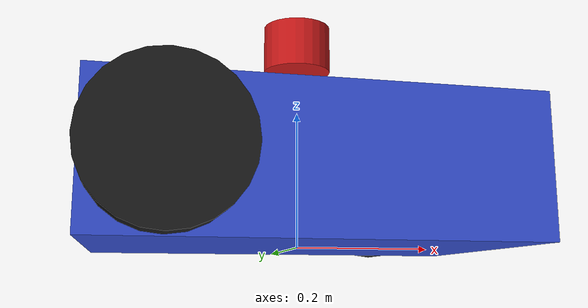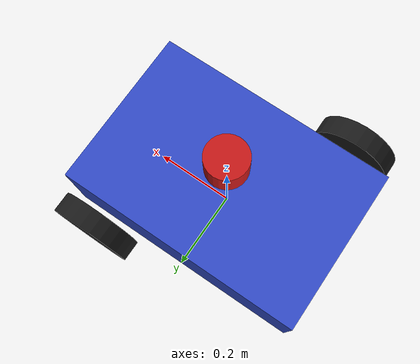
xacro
<?xml version="1.0"?>
<robot name="custom_robot" xmlns:xacro="http://www.ros.org/wiki/xacro">

  <!-- Include sensor macros -->
  <xacro:include filename="$(find custom_robot_description)/urdf/sensors/velodyne.urdf.xacro"/>
  <xacro:include filename="$(find custom_robot_description)/urdf/sensors/imu.urdf.xacro"/>

  <!-- Robot Properties -->
  <xacro:property name="chassis_length" value="0.6"/>
  <xacro:property name="chassis_width" value="0.4"/>
  <xacro:property name="chassis_height" value="0.2"/>
  <xacro:property name="chassis_mass" value="15.0"/>

  <xacro:property name="wheel_radius" value="0.1"/>
  <xacro:property name="wheel_width" value="0.05"/>
  <xacro:property name="wheel_mass" value="1.0"/>

  <!-- Base Footprint (for TF tree) -->
  <link name="base_footprint"/>

  <joint name="base_joint" type="fixed">
    <parent link="base_footprint"/>
    <child link="base_link"/>
    <origin xyz="0.0 0.0 ${wheel_radius}" rpy="0 0 0"/>
  </joint>

  <!-- Main Chassis -->
  <link name="base_link">
    <visual>
      <origin xyz="0 0 0" rpy="0 0 0"/>
      <geometry>
        <box size="${chassis_length} ${chassis_width} ${chassis_height}"/>
      </geometry>
      <material name="blue">
        <color rgba="0.2 0.3 0.8 1.0"/>
      </material>
    </visual>

    <collision>
      <origin xyz="0 0 0" rpy="0 0 0"/>
      <geometry>
        <box size="${chassis_length} ${chassis_width} ${chassis_height}"/>
      </geometry>
    </collision>

    <inertial>
      <origin xyz="0 0 0" rpy="0 0 0"/>
      <mass value="${chassis_mass}"/>
      <inertia ixx="0.1" ixy="0.0" ixz="0.0" iyy="0.1" iyz="0.0" izz="0.1"/>
    </inertial>
  </link>

  <!-- Wheel Macro -->
  <xacro:macro name="wheel" params="prefix side reflect">
    <link name="${prefix}_${side}_wheel">
      <visual>
        <origin xyz="0 0 0" rpy="${pi/2} 0 0"/>
        <geometry>
          <cylinder radius="${wheel_radius}" length="${wheel_width}"/>
        </geometry>
        <material name="black">
          <color rgba="0.1 0.1 0.1 1.0"/>
        </material>
      </visual>

      <collision>
        <origin xyz="0 0 0" rpy="${pi/2} 0 0"/>
        <geometry>
          <cylinder radius="${wheel_radius}" length="${wheel_width}"/>
        </geometry>
      </collision>

      <inertial>
        <mass value="${wheel_mass}"/>
        <inertia ixx="0.001" ixy="0.0" ixz="0.0" iyy="0.001" iyz="0.0" izz="0.001"/>
      </inertial>
    </link>

    <joint name="${prefix}_${side}_wheel_joint" type="continuous">
      <parent link="base_link"/>
      <child link="${prefix}_${side}_wheel"/>
      <origin xyz="${reflect * 0.2} ${reflect * 0.25} 0" rpy="0 0 0"/>
      <axis xyz="0 1 0"/>
    </joint>
  </xacro:macro>

  <!-- Create 4 Wheels -->
  <xacro:wheel prefix="front" side="left" reflect="1"/>
  <xacro:wheel prefix="front" side="right" reflect="-1"/>
  <xacro:wheel prefix="rear" side="left" reflect="1"/>
  <xacro:wheel prefix="rear" side="right" reflect="-1"/>

  <!-- Include Sensors -->
  <xacro:velodyne_sensor parent="base_link">
    <origin xyz="0.0 0.0 ${chassis_height/2 + 0.1}" rpy="0 0 0"/>
  </xacro:velodyne_sensor>

  <xacro:imu_sensor parent="base_link">
    <origin xyz="0.0 0.0 0.0" rpy="0 0 0"/>
  </xacro:imu_sensor>

    <!-- Differential Drive Plugin -->
  <gazebo>
    <plugin name="differential_drive_controller" filename="libgazebo_ros_diff_drive.so">
      <update_rate>50</update_rate>

      <!-- Wheel joints -->
      <left_joint>front_left_wheel_joint</left_joint>
      <right_joint>front_right_wheel_joint</right_joint>

      <!-- Wheel parameters -->
      <wheel_separation>0.5</wheel_separation>
      <wheel_diameter>0.2</wheel_diameter>

      <!-- Limits -->
      <max_wheel_torque>20</max_wheel_torque>
      <max_wheel_acceleration>1.0</max_wheel_acceleration>

      <!-- Command topic -->
      <command_topic>cmd_vel</command_topic>

      <!-- Odometry -->
      <publish_odom>true</publish_odom>
      <publish_odom_tf>true</publish_odom_tf>
      <publish_wheel_tf>false</publish_wheel_tf>
      <odometry_topic>odom</odometry_topic>
      <odometry_frame>odom</odometry_frame>
      <robot_base_frame>base_footprint</robot_base_frame>
    </plugin>
  </gazebo>

</robot>

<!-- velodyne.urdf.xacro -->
<robot xmlns:xacro="http://www.ros.org/wiki/xacro">

  <xacro:macro name="velodyne_sensor" params="parent *origin">

    <!-- Velodyne Link -->
    <link name="velodyne">
      <visual>
        <geometry>
          <cylinder radius="0.05" length="0.07"/>
        </geometry>
        <material name="red">
          <color rgba="0.8 0.1 0.1 1.0"/>
        </material>
      </visual>

      <collision>
        <geometry>
          <cylinder radius="0.05" length="0.07"/>
        </geometry>
      </collision>

      <inertial>
        <mass value="0.1"/>
        <inertia ixx="0.001" ixy="0.0" ixz="0.0" iyy="0.001" iyz="0.0" izz="0.001"/>
      </inertial>
    </link>

    <joint name="velodyne_joint" type="fixed">
      <parent link="${parent}"/>
      <child link="velodyne"/>
      <xacro:insert_block name="origin"/>
    </joint>

    <!-- Gazebo LiDAR Plugin -->
    <gazebo reference="velodyne">
      <sensor type="ray" name="velodyne_sensor">
        <pose>0 0 0 0 0 0</pose>
        <visualize>false</visualize>
        <update_rate>10</update_rate>
        <ray>
          <scan>
            <horizontal>
              <samples>1800</samples>
              <min_angle>-${pi}</min_angle>
              <max_angle>${pi}</max_angle>
            </horizontal>
            <vertical>
              <samples>16</samples>
              <min_angle>-${15.0*pi/180.0}</min_angle>
              <max_angle>${15.0*pi/180.0}</max_angle>
            </vertical>
          </scan>
          <range>
            <min>0.3</min>
            <max>100.0</max>
          </range>
        </ray>
        <plugin name="gazebo_ros_velodyne_laser_controller" filename="libgazebo_ros_velodyne_laser.so">
          <topicName>velodyne_points</topicName>
          <frameName>velodyne</frameName>
        </plugin>
      </sensor>
    </gazebo>

  </xacro:macro>

</robot>

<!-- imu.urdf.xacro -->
<robot xmlns:xacro="http://www.ros.org/wiki/xacro">

  <xacro:macro name="imu_sensor" params="parent *origin">

    <!-- IMU Link -->
    <link name="imu_link">
      <visual>
        <geometry>
          <box size="0.03 0.03 0.01"/>
        </geometry>
        <material name="grey">
          <color rgba="0.5 0.5 0.5 1.0"/>
        </material>
      </visual>

      <inertial>
        <mass value="0.01"/>
        <inertia ixx="0.0001" ixy="0.0" ixz="0.0" iyy="0.0001" iyz="0.0" izz="0.0001"/>
      </inertial>
    </link>

    <joint name="imu_joint" type="fixed">
      <parent link="${parent}"/>
      <child link="imu_link"/>
      <xacro:insert_block name="origin"/>
    </joint>

    <!-- Gazebo IMU Plugin -->
    <gazebo reference="imu_link">
      <sensor name="imu_sensor" type="imu">
        <always_on>true</always_on>
        <update_rate>100</update_rate>
        <plugin filename="libgazebo_ros_imu_sensor.so" name="imu_plugin">
          <topicName>imu/data</topicName>
          <bodyName>imu_link</bodyName>
        </plugin>
      </sensor>
    </gazebo>

  </xacro:macro>

</robot>
